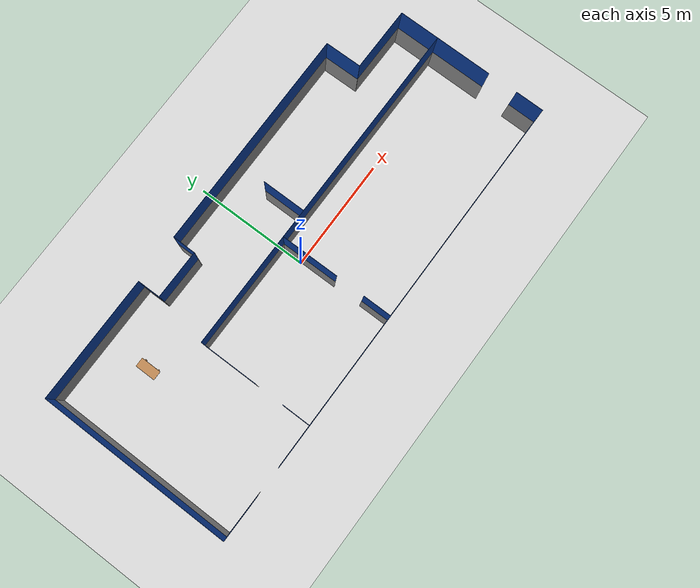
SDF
<sdf version="1.6">
 <world name="default">
  <model name="apartment">
   <link name="Wall_11_Bottom">
    <collision name="Wall_11_Bottom_Collision">
     <geometry><box><size>9.6682 0.01 1.32874</size></box></geometry>
     <pose>0 0 1.25 0 -0 0</pose>
    </collision>
    <visual name="Wall_11_Bottom_Visual">
     <pose>0 0 1.25 0 -0 0</pose>
     <geometry><box><size>9.6682 0.01 1.32874</size></box></geometry>
     <material>
      <script><uri>file://media/materials/scripts/gazebo.material</uri><name>Gazebo/Grey</name></script>
      <ambient>1 1 1 1</ambient>
     </material>
    </visual>
    <pose>2.36479 4.14145 -0.585631 0 -0 0.003242</pose>
   </link>
   <link name="Wall_11_Top">
    <collision name="Wall_11_Top_Collision">
     <geometry><box><size>9.6682 0.01 1.32874</size></box></geometry>
     <pose>0 0 1.25 0 -0 0</pose>
    </collision>
    <visual name="Wall_11_Top_Visual">
     <pose>0 0 1.25 0 -0 0</pose>
     <geometry><box><size>9.6682 0.01 1.32874</size></box></geometry>
     <material><ambient>0.0588235 0.278431 0.682353 1</ambient></material>
    </visual>
    <pose>2.36479 4.14145 0.743106 0 -0 0.003242</pose>
   </link>
   <link name="Wall_12_Bottom">
    <collision name="Wall_12_Bottom_Collision">
     <geometry><box><size>1.57865 0.01 1.32874</size></box></geometry>
     <pose>0 0 1.25 0 -0 0</pose>
    </collision>
    <visual name="Wall_12_Bottom_Visual">
     <pose>0 0 1.25 0 -0 0</pose>
     <geometry><box><size>1.57865 0.01 1.32874</size></box></geometry>
     <material>
      <script><uri>file://media/materials/scripts/gazebo.material</uri><name>Gazebo/Grey</name></script>
      <ambient>1 1 1 1</ambient>
     </material>
    </visual>
    <pose>7.21714 3.37282 -0.585631 0 0 -1.56019</pose>
   </link>
   <link name="Wall_12_Top">
    <collision name="Wall_12_Top_Collision">
     <geometry><box><size>1.57865 0.01 1.32874</size></box></geometry>
     <pose>0 0 1.25 0 -0 0</pose>
    </collision>
    <visual name="Wall_12_Top_Visual">
     <pose>0 0 1.25 0 -0 0</pose>
     <geometry><box><size>1.57865 0.01 1.32874</size></box></geometry>
     <material><ambient>0.0588235 0.278431 0.682353 1</ambient></material>
    </visual>
    <pose>7.21714 3.37282 0.743106 0 0 -1.56019</pose>
   </link>
   <link name="Wall_15_Bottom">
    <collision name="Wall_15_Bottom_Collision">
     <geometry><box><size>2.78102 0.01 1.32874</size></box></geometry>
     <pose>0 0 1.25 0 -0 0</pose>
    </collision>
    <visual name="Wall_15_Bottom_Visual">
     <pose>0 0 1.25 0 -0 0</pose>
     <geometry><box><size>2.78102 0.01 1.32874</size></box></geometry>
     <material>
      <script><uri>file://media/materials/scripts/gazebo.material</uri><name>Gazebo/Grey</name></script>
      <ambient>1 1 1 1</ambient>
     </material>
    </visual>
    <pose>8.61097 2.58077 -0.585631 0 0 -0.005604</pose>
   </link>
   <link name="Wall_15_Top">
    <collision name="Wall_15_Top_Collision">
     <geometry><box><size>2.78102 0.01 1.32874</size></box></geometry>
     <pose>0 0 1.25 0 -0 0</pose>
    </collision>
    <visual name="Wall_15_Top_Visual">
     <pose>0 0 1.25 0 -0 0</pose>
     <geometry><box><size>2.78102 0.01 1.32874</size></box></geometry>
     <material><ambient>0.0588235 0.278431 0.682353 1</ambient></material>
    </visual>
    <pose>8.61097 2.58077 0.743106 0 0 -0.005604</pose>
   </link>
   <link name="Wall_16_Bottom">
    <collision name="Wall_16_Bottom_Collision">
     <geometry><box><size>4.19662 0.01 1.32874</size></box></geometry>
     <pose>0 0 1.25 0 -0 0</pose>
    </collision>
    <visual name="Wall_16_Bottom_Visual">
     <pose>0 0 1.25 0 -0 0</pose>
     <geometry><box><size>4.19662 0.01 1.32874</size></box></geometry>
     <material>
      <script><uri>file://media/materials/scripts/gazebo.material</uri><name>Gazebo/Grey</name></script>
      <ambient>1 1 1 1</ambient>
     </material>
    </visual>
    <pose>9.99989 0.479714 -0.585631 0 0 -1.57325</pose>
   </link>
   <link name="Wall_16_Top">
    <collision name="Wall_16_Top_Collision">
     <geometry><box><size>4.19662 0.01 1.32874</size></box></geometry>
     <pose>0 0 1.25 0 -0 0</pose>
    </collision>
    <visual name="Wall_16_Top_Visual">
     <pose>0 0 1.25 0 -0 0</pose>
     <geometry><box><size>4.19662 0.01 1.32874</size></box></geometry>
     <material><ambient>0.0588235 0.278431 0.682353 1</ambient></material>
    </visual>
    <pose>9.99989 0.479714 0.743106 0 0 -1.57325</pose>
   </link>
   <link name="Wall_18_Bottom">
    <collision name="Wall_18_Bottom_Collision">
     <geometry><box><size>1.2318 0.01 1.32874</size></box></geometry>
     <pose>0 0 1.25 0 -0 0</pose>
    </collision>
    <visual name="Wall_18_Bottom_Visual">
     <pose>0 0 1.25 0 -0 0</pose>
     <geometry><box><size>1.2318 0.01 1.32874</size></box></geometry>
     <material>
      <script><uri>file://media/materials/scripts/gazebo.material</uri><name>Gazebo/Grey</name></script>
      <ambient>1 1 1 1</ambient>
     </material>
    </visual>
    <pose>10.0193 -3.51742 -0.585631 0 0 -1.57439</pose>
   </link>
   <link name="Wall_18_Top">
    <collision name="Wall_18_Top_Collision">
     <geometry><box><size>1.2318 0.01 1.32874</size></box></geometry>
     <pose>0 0 1.25 0 -0 0</pose>
    </collision>
    <visual name="Wall_18_Top_Visual">
     <pose>0 0 1.25 0 -0 0</pose>
     <geometry><box><size>1.2318 0.01 1.32874</size></box></geometry>
     <material><ambient>0.0588235 0.278431 0.682353 1</ambient></material>
    </visual>
    <pose>10.0193 -3.51742 0.743106 0 0 -1.57439</pose>
   </link>
   <link name="Wall_19_Bottom">
    <collision name="Wall_19_Bottom_Collision">
     <geometry><box><size>16.8681 0.01 1.32874</size></box></geometry>
     <pose>0 0 1.25 0 -0 0</pose>
    </collision>
    <visual name="Wall_19_Bottom_Visual">
     <pose>0 0 1.25 0 -0 0</pose>
     <geometry><box><size>16.8681 0.01 1.32874</size></box></geometry>
     <material>
      <script><uri>file://media/materials/scripts/gazebo.material</uri><name>Gazebo/Grey</name></script>
      <ambient>1 1 1 1</ambient>
     </material>
    </visual>
    <pose>1.58828 -4.13952 -0.585631 0 0 -3.14015</pose>
   </link>
   <link name="Wall_19_Top">
    <collision name="Wall_19_Top_Collision">
     <geometry><box><size>16.8681 0.01 1.32874</size></box></geometry>
     <pose>0 0 1.25 0 -0 0</pose>
    </collision>
    <visual name="Wall_19_Top_Visual">
     <pose>0 0 1.25 0 -0 0</pose>
     <geometry><box><size>16.8681 0.01 1.32874</size></box></geometry>
     <material><ambient>0.0588235 0.278431 0.682353 1</ambient></material>
    </visual>
    <pose>1.58828 -4.13952 0.743106 0 0 -3.14015</pose>
   </link>
   <link name="Wall_21_Bottom">
    <collision name="Wall_21_Bottom_Collision">
     <geometry><box><size>1.91841 0.01 1.32874</size></box></geometry>
     <pose>0 0 1.25 0 -0 0</pose>
    </collision>
    <visual name="Wall_21_Bottom_Visual">
     <pose>0 0 1.25 0 -0 0</pose>
     <geometry><box><size>1.91841 0.01 1.32874</size></box></geometry>
     <material>
      <script><uri>file://media/materials/scripts/gazebo.material</uri><name>Gazebo/Grey</name></script>
      <ambient>1 1 1 1</ambient>
     </material>
    </visual>
    <pose>-9.06728 -4.14723 -0.585631 0 -0 3.13664</pose>
   </link>
   <link name="Wall_21_Top">
    <collision name="Wall_21_Top_Collision">
     <geometry><box><size>1.91841 0.01 1.32874</size></box></geometry>
     <pose>0 0 1.25 0 -0 0</pose>
    </collision>
    <visual name="Wall_21_Top_Visual">
     <pose>0 0 1.25 0 -0 0</pose>
     <geometry><box><size>1.91841 0.01 1.32874</size></box></geometry>
     <material><ambient>0.0588235 0.278431 0.682353 1</ambient></material>
    </visual>
    <pose>-9.06728 -4.14723 0.743106 0 -0 3.13664</pose>
   </link>
   <link name="Wall_22_Bottom">
    <collision name="Wall_22_Bottom_Collision">
     <geometry><box><size>8.2785 0.01 1.32874</size></box></geometry>
     <pose>0 0 1.25 0 -0 0</pose>
    </collision>
    <visual name="Wall_22_Bottom_Visual">
     <pose>0 0 1.25 0 -0 0</pose>
     <geometry><box><size>8.2785 0.01 1.32874</size></box></geometry>
     <material>
      <script><uri>file://media/materials/scripts/gazebo.material</uri><name>Gazebo/Grey</name></script>
      <ambient>1 1 1 1</ambient>
     </material>
    </visual>
    <pose>-10.002 -0.008293 -0.585631 0 -0 1.56643</pose>
   </link>
   <link name="Wall_22_Top">
    <collision name="Wall_22_Top_Collision">
     <geometry><box><size>8.2785 0.01 1.32874</size></box></geometry>
     <pose>0 0 1.25 0 -0 0</pose>
    </collision>
    <visual name="Wall_22_Top_Visual">
     <pose>0 0 1.25 0 -0 0</pose>
     <geometry><box><size>8.2785 0.01 1.32874</size></box></geometry>
     <material><ambient>0.0588235 0.278431 0.682353 1</ambient></material>
    </visual>
    <pose>-10.002 -0.008293 0.743106 0 -0 1.56643</pose>
   </link>
   <link name="Wall_34_Bottom">
    <collision name="Wall_34_Bottom_Collision">
     <geometry><box><size>2.10809 0.01 1.32874</size></box></geometry>
     <pose>0 0 1.25 0 -0 0</pose>
    </collision>
    <visual name="Wall_34_Bottom_Visual">
     <pose>0 0 1.25 0 -0 0</pose>
     <geometry><box><size>2.10809 0.01 1.32874</size></box></geometry>
     <material>
      <script><uri>file://media/materials/scripts/gazebo.material</uri><name>Gazebo/Grey</name></script>
      <ambient>1 1 1 1</ambient>
     </material>
    </visual>
    <pose>-3.51618 3.14425 -0.585631 0 0 -0.003415</pose>
   </link>
   <link name="Wall_34_Top">
    <collision name="Wall_34_Top_Collision">
     <geometry><box><size>2.10809 0.01 1.32874</size></box></geometry>
     <pose>0 0 1.25 0 -0 0</pose>
    </collision>
    <visual name="Wall_34_Top_Visual">
     <pose>0 0 1.25 0 -0 0</pose>
     <geometry><box><size>2.10809 0.01 1.32874</size></box></geometry>
     <material><ambient>0.0588235 0.278431 0.682353 1</ambient></material>
    </visual>
    <pose>-3.51618 3.14425 0.743106 0 0 -0.003415</pose>
   </link>
   <link name="Wall_4_Bottom">
    <collision name="Wall_4_Bottom_Collision">
     <geometry><box><size>5.41613 0.01 1.32874</size></box></geometry>
     <pose>0 0 1.25 0 -0 0</pose>
    </collision>
    <visual name="Wall_4_Bottom_Visual">
     <pose>0 0 1.25 0 -0 0</pose>
     <geometry><box><size>5.41613 0.01 1.32874</size></box></geometry>
     <material>
      <script><uri>file://media/materials/scripts/gazebo.material</uri><name>Gazebo/Grey</name></script>
      <ambient>1 1 1 1</ambient>
     </material>
    </visual>
    <pose>-7.28234 4.12511 -0.585631 0 0 -0.0003</pose>
   </link>
   <link name="Wall_4_Top">
    <collision name="Wall_4_Top_Collision">
     <geometry><box><size>5.41613 0.01 1.32874</size></box></geometry>
     <pose>0 0 1.25 0 -0 0</pose>
    </collision>
    <visual name="Wall_4_Top_Visual">
     <pose>0 0 1.25 0 -0 0</pose>
     <geometry><box><size>5.41613 0.01 1.32874</size></box></geometry>
     <material><ambient>0.0588235 0.278431 0.682353 1</ambient></material>
    </visual>
    <pose>-7.28234 4.12511 0.743106 0 0 -0.0003</pose>
   </link>
   <link name="Wall_41_Bottom">
    <collision name="Wall_41_Bottom_Collision">
     <geometry><box><size>1.26357 0.01 1.32874</size></box></geometry>
     <pose>0 0 1.25 0 -0 0</pose>
    </collision>
    <visual name="Wall_41_Bottom_Visual">
     <pose>0 0 1.25 0 -0 0</pose>
     <geometry><box><size>1.26357 0.01 1.32874</size></box></geometry>
     <material>
      <script><uri>file://media/materials/scripts/gazebo.material</uri><name>Gazebo/Grey</name></script>
      <ambient>1 1 1 1</ambient>
     </material>
    </visual>
    <pose>-4.95628 -3.53036 -0.585631 0 -0 1.56863</pose>
   </link>
   <link name="Wall_41_Top">
    <collision name="Wall_41_Top_Collision">
     <geometry><box><size>1.26357 0.01 1.32874</size></box></geometry>
     <pose>0 0 1.25 0 -0 0</pose>
    </collision>
    <visual name="Wall_41_Top_Visual">
     <pose>0 0 1.25 0 -0 0</pose>
     <geometry><box><size>1.26357 0.01 1.32874</size></box></geometry>
     <material><ambient>0.0588235 0.278431 0.682353 1</ambient></material>
    </visual>
    <pose>-4.95628 -3.53036 0.743106 0 -0 1.56863</pose>
   </link>
   <link name="Wall_46_Bottom">
    <collision name="Wall_46_Bottom_Collision">
     <geometry><box><size>2.51611 0.01 1.32874</size></box></geometry>
     <pose>0 0 1.25 0 -0 0</pose>
    </collision>
    <visual name="Wall_46_Bottom_Visual">
     <pose>0 0 1.25 0 -0 0</pose>
     <geometry><box><size>2.51611 0.01 1.32874</size></box></geometry>
     <material>
      <script><uri>file://media/materials/scripts/gazebo.material</uri><name>Gazebo/Grey</name></script>
      <ambient>1 1 1 1</ambient>
     </material>
    </visual>
    <pose>-4.95391 -0.395397 -0.585631 0 -0 1.57146</pose>
   </link>
   <link name="Wall_46_Top">
    <collision name="Wall_46_Top_Collision">
     <geometry><box><size>2.51611 0.01 1.32874</size></box></geometry>
     <pose>0 0 1.25 0 -0 0</pose>
    </collision>
    <visual name="Wall_46_Top_Visual">
     <pose>0 0 1.25 0 -0 0</pose>
     <geometry><box><size>2.51611 0.01 1.32874</size></box></geometry>
     <material><ambient>0.0588235 0.278431 0.682353 1</ambient></material>
    </visual>
    <pose>-4.95391 -0.395397 0.743106 0 -0 1.57146</pose>
   </link>
   <link name="Wall_47_Bottom">
    <collision name="Wall_47_Bottom_Collision">
     <geometry><box><size>14.9335 0.01 1.32874</size></box></geometry>
     <pose>0 0 1.25 0 -0 0</pose>
    </collision>
    <visual name="Wall_47_Bottom_Visual">
     <pose>0 0 1.25 0 -0 0</pose>
     <geometry><box><size>14.9335 0.01 1.32874</size></box></geometry>
     <material>
      <script><uri>file://media/materials/scripts/gazebo.material</uri><name>Gazebo/Grey</name></script>
      <ambient>1 1 1 1</ambient>
     </material>
    </visual>
    <pose>2.51347 0.847509 -0.585631 0 0 -0.001348</pose>
   </link>
   <link name="Wall_47_Top">
    <collision name="Wall_47_Top_Collision">
     <geometry><box><size>14.9335 0.01 1.32874</size></box></geometry>
     <pose>0 0 1.25 0 -0 0</pose>
    </collision>
    <visual name="Wall_47_Top_Visual">
     <pose>0 0 1.25 0 -0 0</pose>
     <geometry><box><size>14.9335 0.01 1.32874</size></box></geometry>
     <material><ambient>0.0588235 0.278431 0.682353 1</ambient></material>
    </visual>
    <pose>2.51347 0.847509 0.743106 0 0 -0.001348</pose>
   </link>
   <link name="Wall_49_Bottom">
    <collision name="Wall_49_Bottom_Collision">
     <geometry><box><size>1.244 0.01 1.32874</size></box></geometry>
     <pose>0 0 1.25 0 -0 0</pose>
    </collision>
    <visual name="Wall_49_Bottom_Visual">
     <pose>0 0 1.25 0 -0 0</pose>
     <geometry><box><size>1.244 0.01 1.32874</size></box></geometry>
     <material>
      <script><uri>file://media/materials/scripts/gazebo.material</uri><name>Gazebo/Grey</name></script>
      <ambient>1 1 1 1</ambient>
     </material>
    </visual>
    <pose>0.039193 -3.52411 -0.585631 0 -0 1.5708</pose>
   </link>
   <link name="Wall_49_Top">
    <collision name="Wall_49_Top_Collision">
     <geometry><box><size>1.244 0.01 1.32874</size></box></geometry>
     <pose>0 0 1.25 0 -0 0</pose>
    </collision>
    <visual name="Wall_49_Top_Visual">
     <pose>0 0 1.25 0 -0 0</pose>
     <geometry><box><size>1.244 0.01 1.32874</size></box></geometry>
     <material><ambient>0.0588235 0.278431 0.682353 1</ambient></material>
    </visual>
    <pose>0.039193 -3.52411 0.743106 0 -0 1.5708</pose>
   </link>
   <link name="Wall_61_Bottom">
    <collision name="Wall_61_Bottom_Collision">
     <geometry><box><size>1.86489 0.01 1.32874</size></box></geometry>
     <pose>0 0 1.25 0 -0 0</pose>
    </collision>
    <visual name="Wall_61_Bottom_Visual">
     <pose>0 0 1.25 0 -0 0</pose>
     <geometry><box><size>1.86489 0.01 1.32874</size></box></geometry>
     <material>
      <script><uri>file://media/materials/scripts/gazebo.material</uri><name>Gazebo/Grey</name></script>
      <ambient>1 1 1 1</ambient>
     </material>
    </visual>
    <pose>1.29442 1.79697 -0.585631 0 -0 1.57049</pose>
   </link>
   <link name="Wall_61_Top">
    <collision name="Wall_61_Top_Collision">
     <geometry><box><size>1.86489 0.01 1.32874</size></box></geometry>
     <pose>0 0 1.25 0 -0 0</pose>
    </collision>
    <visual name="Wall_61_Top_Visual">
     <pose>0 0 1.25 0 -0 0</pose>
     <geometry><box><size>1.86489 0.01 1.32874</size></box></geometry>
     <material><ambient>0.0588235 0.278431 0.682353 1</ambient></material>
    </visual>
    <pose>1.29442 1.79697 0.743106 0 -0 1.57049</pose>
   </link>
   <link name="Wall_65_Bottom">
    <collision name="Wall_65_Bottom_Collision">
     <geometry><box><size>0.998401 0.01 1.32874</size></box></geometry>
     <pose>0 0 1.25 0 -0 0</pose>
    </collision>
    <visual name="Wall_65_Bottom_Visual">
     <pose>0 0 1.25 0 -0 0</pose>
     <geometry><box><size>0.998401 0.01 1.32874</size></box></geometry>
     <material>
      <script><uri>file://media/materials/scripts/gazebo.material</uri><name>Gazebo/Grey</name></script>
      <ambient>1 1 1 1</ambient>
     </material>
    </visual>
    <pose>-2.4641 3.63485 -0.585631 0 -0 1.57118</pose>
   </link>
   <link name="Wall_65_Top">
    <collision name="Wall_65_Top_Collision">
     <geometry><box><size>0.998401 0.01 1.32874</size></box></geometry>
     <pose>0 0 1.25 0 -0 0</pose>
    </collision>
    <visual name="Wall_65_Top_Visual">
     <pose>0 0 1.25 0 -0 0</pose>
     <geometry><box><size>0.998401 0.01 1.32874</size></box></geometry>
     <material><ambient>0.0588235 0.278431 0.682353 1</ambient></material>
    </visual>
    <pose>-2.4641 3.63485 0.743106 0 -0 1.57118</pose>
   </link>
   <link name="Wall_69_Bottom">
    <collision name="Wall_69_Bottom_Collision">
     <geometry><box><size>0.993206 0.01 1.32874</size></box></geometry>
     <pose>0 0 1.25 0 -0 0</pose>
    </collision>
    <visual name="Wall_69_Bottom_Visual">
     <pose>0 0 1.25 0 -0 0</pose>
     <geometry><box><size>0.993206 0.01 1.32874</size></box></geometry>
     <material>
      <script><uri>file://media/materials/scripts/gazebo.material</uri><name>Gazebo/Grey</name></script>
      <ambient>1 1 1 1</ambient>
     </material>
    </visual>
    <pose>-4.56795 3.63943 -0.585631 0 -0 1.57351</pose>
   </link>
   <link name="Wall_69_Top">
    <collision name="Wall_69_Top_Collision">
     <geometry><box><size>0.993206 0.01 1.32874</size></box></geometry>
     <pose>0 0 1.25 0 -0 0</pose>
    </collision>
    <visual name="Wall_69_Top_Visual">
     <pose>0 0 1.25 0 -0 0</pose>
     <geometry><box><size>0.993206 0.01 1.32874</size></box></geometry>
     <material><ambient>0.0588235 0.278431 0.682353 1</ambient></material>
    </visual>
    <pose>-4.56795 3.63943 0.743106 0 -0 1.57351</pose>
   </link>
   <link name="Wall_71_Bottom">
    <collision name="Wall_71_Bottom_Collision">
     <geometry><box><size>2.51204 0.01 1.32874</size></box></geometry>
     <pose>0 0 1.25 0 -0 0</pose>
    </collision>
    <visual name="Wall_71_Bottom_Visual">
     <pose>0 0 1.25 0 -0 0</pose>
     <geometry><box><size>2.51204 0.01 1.32874</size></box></geometry>
     <material>
      <script><uri>file://media/materials/scripts/gazebo.material</uri><name>Gazebo/Grey</name></script>
      <ambient>1 1 1 1</ambient>
     </material>
    </visual>
    <pose>0.034149 -0.396524 -0.585631 0 0 -1.56821</pose>
   </link>
   <link name="Wall_71_Top">
    <collision name="Wall_71_Top_Collision">
     <geometry><box><size>2.51204 0.01 1.32874</size></box></geometry>
     <pose>0 0 1.25 0 -0 0</pose>
    </collision>
    <visual name="Wall_71_Top_Visual">
     <pose>0 0 1.25 0 -0 0</pose>
     <geometry><box><size>2.51204 0.01 1.32874</size></box></geometry>
     <material><ambient>0.0588235 0.278431 0.682353 1</ambient></material>
    </visual>
    <pose>0.034149 -0.396524 0.743106 0 0 -1.56821</pose>
   </link>
   <static>1</static>
  </model>
  <light name="sun" type="directional">
   <pose>0 0 10 0 -0 0</pose>
   <diffuse>0.8 0.8 0.8 1</diffuse>
   <specular>0.2 0.2 0.2 1</specular>
   <attenuation>
    <range>1000</range>
    <constant>0.9</constant>
    <linear>0.01</linear>
    <quadratic>0.001</quadratic>
   </attenuation>
   <direction>-0.5 0.1 -0.9</direction>
  </light>
  <model name="ground_plane">
   <static>1</static>
   <link name="link">
    <collision name="collision">
     <geometry><plane><normal>0 0 1</normal><size>100 100</size></plane></geometry>
     <surface><friction><ode><mu>100</mu><mu2>50</mu2></ode></friction></surface>
    </collision>
    <visual name="visual">
     <cast_shadows>0</cast_shadows>
     <geometry><plane><normal>0 0 1</normal><size>100 100</size></plane></geometry>
     <material>
      <script><uri>file://media/materials/scripts/gazebo.material</uri><name>Gazebo/Grey</name></script>
     </material>
    </visual>
   </link>
  </model>
  <gravity>0 0 -9.8</gravity>
  <magnetic_field>6e-06 2.3e-05 -4.2e-05</magnetic_field>
  <atmosphere type="adiabatic"/>
  <physics name="default_physics" default="0" type="ode">
   <max_step_size>0.001</max_step_size>
   <real_time_factor>1</real_time_factor>
   <real_time_update_rate>1000</real_time_update_rate>
  </physics>
  <scene><ambient>0.4 0.4 0.4 1</ambient><background>0.7 0.7 0.7 1</background><shadows>1</shadows></scene>
  <spherical_coordinates>
   <surface_model>EARTH_WGS84</surface_model>
   <latitude_deg>0</latitude_deg>
   <longitude_deg>0</longitude_deg>
   <elevation>0</elevation>
   <heading_deg>0</heading_deg>
  </spherical_coordinates>
  <audio><device>default</device></audio>
  <model name="bed_table">
   <link name="link">
    <inertial>
     <pose>0 0.449 0.001 0 -0 0</pose>
     <mass>10</mass>
     <inertia><ixx>1</ixx><ixy>0</ixy><ixz>0</ixz><iyy>1</iyy><iyz>0</iyz><izz>1</izz></inertia>
    </inertial>
    <visual name="top_board">
     <pose>0 0.449 0.625 0 -0 0</pose>
     <geometry><box><size>0.398 0.898 0.02</size></box></geometry>
     <material>
      <script><uri>model://base_materials/wood/scripts/wood.material</uri><name>base_materials/wood</name></script>
     </material>
    </visual>
    <collision name="collision_top_board">
     <pose>0 0.449 0.625 0 -0 0</pose>
     <geometry><box><size>0.398 0.898 0.02</size></box></geometry>
    </collision>
    <visual name="right_pole">
     <pose>0 0.817 0.3515 0 -0 0</pose>
     <geometry><box><size>0.072 0.094 0.527</size></box></geometry>
     <material>
      <script><uri>model://base_materials/color/scripts</uri><name>hsr_color/grey</name></script>
     </material>
    </visual>
    <collision name="collision_right_pole">
     <pose>0 0.817 0.3515 0 -0 0</pose>
     <geometry><box><size>0.072 0.094 0.527</size></box></geometry>
    </collision>
    <visual name="right_bottom_pole">
     <pose>0 0.8225 0.044 0 -0 0</pose>
     <geometry><box><size>0.42 0.063 0.088</size></box></geometry>
     <material>
      <script><uri>model://base_materials/wood/scripts/wood.material</uri><name>base_materials/wood</name></script>
     </material>
    </visual>
    <collision name="collision_right_bottom_pole">
     <pose>0 0.8225 0.044 0 -0 0</pose>
     <geometry><box><size>0.42 0.063 0.088</size></box></geometry>
    </collision>
    <visual name="bottom_center_pole">
     <pose>0 0.502 0.03 0 -0 0</pose>
     <geometry><box><size>0.06 0.578 0.03</size></box></geometry>
     <material>
      <script><uri>model://base_materials/wood/scripts/wood.material</uri><name>base_materials/wood</name></script>
     </material>
    </visual>
    <collision name="collision_bottom_center_pole">
     <pose>0 0.502 0.03 0 -0 0</pose>
     <geometry><box><size>0.06 0.578 0.03</size></box></geometry>
    </collision>
    <visual name="left_bottom_pole">
     <pose>0 0.18 0.0325 0 -0 0</pose>
     <geometry><box><size>0.418 0.066 0.025</size></box></geometry>
     <material>
      <script><uri>model://base_materials/wood/scripts/wood.material</uri><name>base_materials/wood</name></script>
     </material>
    </visual>
    <collision name="collision_left_bottom_pole">
     <pose>0 0.18 0.0325 0 -0 0</pose>
     <geometry><box><size>0.418 0.066 0.025</size></box></geometry>
    </collision>
    <visual name="marker_0010">
     <pose>0 0.14 0.093 0 -0 0</pose>
     <geometry><box><size>0.09 0.001 0.09</size></box></geometry>
     <material>
      <script>
       <uri>model://bed_table/marker/0010/scripts</uri>
       <uri>model://bed_table/marker/0010/textures</uri>
       <name>Marker/0010</name>
      </script>
     </material>
    </visual>
    <collision name="collision_marker_0010">
     <pose>0 0.14 0.093 0 -0 0</pose>
     <geometry><box><size>0.09 0.001 0.09</size></box></geometry>
    </collision>
    <visual name="marker_0010_back_plate">
     <pose>0 0.146 0.093 0 -0 0</pose>
     <geometry><box><size>0.09 0.01 0.09</size></box></geometry>
     <material>
      <script><uri>model://base_materials/wood/scripts/wood.material</uri><name>base_materials/wood</name></script>
     </material>
    </visual>
    <collision name="collision_marker_0010_back_plate">
     <pose>0 0.146 0.093 0 -0 0</pose>
     <geometry><box><size>0.09 0.01 0.09</size></box></geometry>
    </collision>
    <velocity_decay><linear>0</linear><angular>0</angular></velocity_decay>
   </link>
   <static>1</static>
   <pose>-6.99979 1.71276 0 0 -0 0</pose>
  </model>
 </world>
</sdf>
